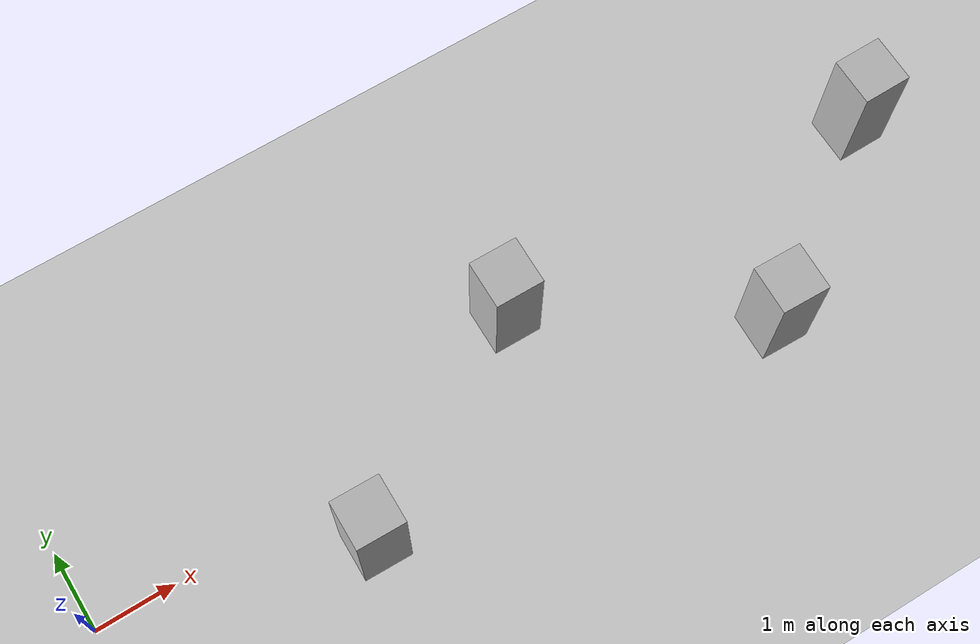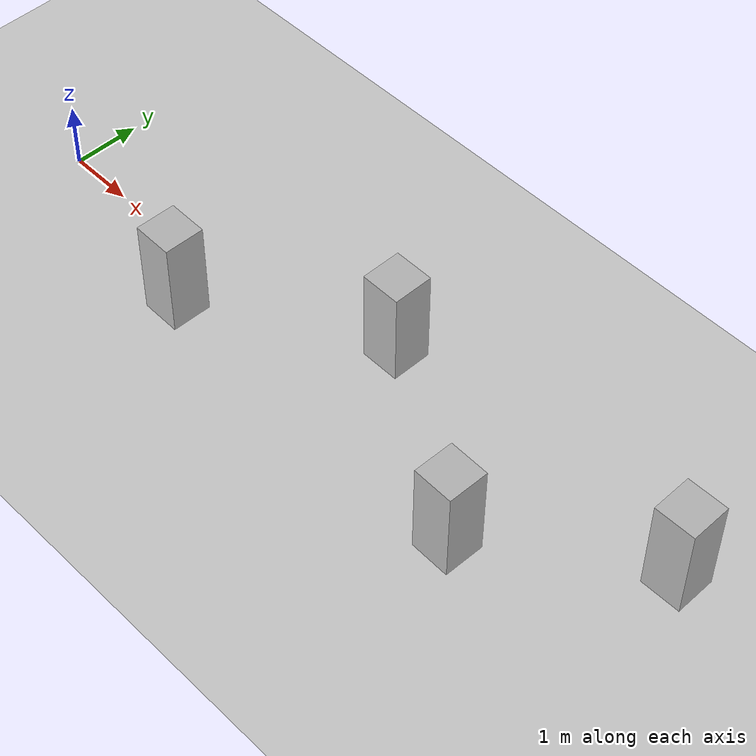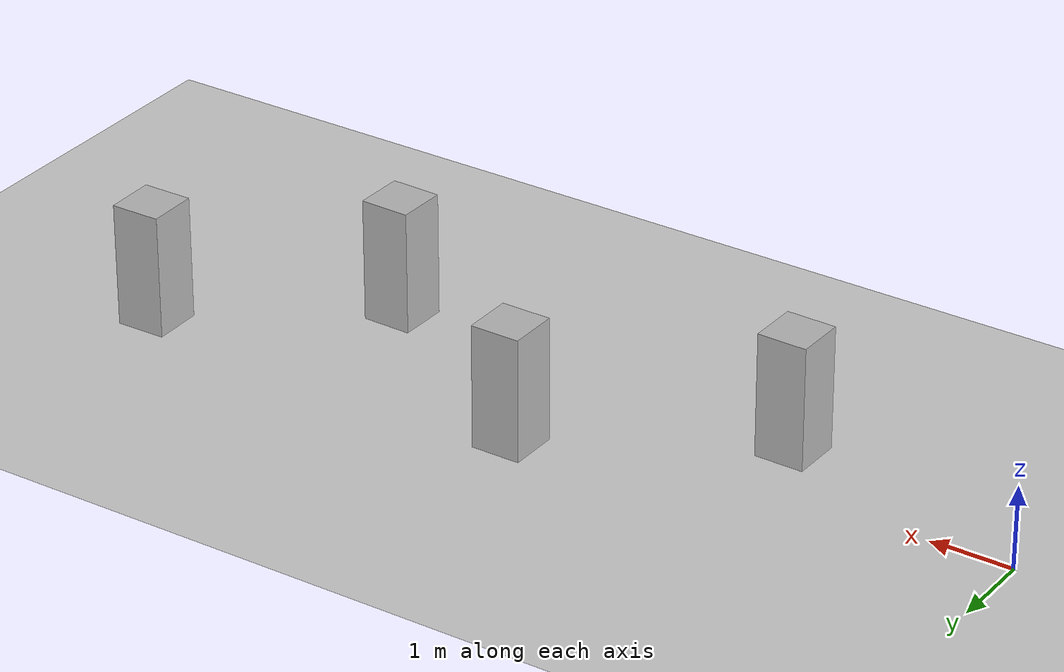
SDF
<?xml version="1.0"?>
<sdf version="1.6">
  <world name="v2-04e2-static-s4713">
    <gravity>0 0 -9.81</gravity>
    <physics name="v2_deterministic" type="ode">
      <max_step_size>0.002</max_step_size>
      <real_time_update_rate>500</real_time_update_rate>
    </physics>
    <include>
      <uri>model://sun</uri>
    </include>
    <include>
      <uri>model://ground_plane</uri>
    </include>
    <model name="pillar-1">
      <static>true</static>
      <pose>3.124409234 -0.771714108 0.750000000 0 0 -0.013963247</pose>
      <link name="link">
        <collision name="collision">
          <geometry>
            <box>
              <size>0.600000 0.600000 1.500000</size>
            </box>
          </geometry>
        </collision>
        <visual name="visual">
          <geometry>
            <box>
              <size>0.600000 0.600000 1.500000</size>
            </box>
          </geometry>
        </visual>
      </link>
    </model>
    <model name="pillar-2">
      <static>true</static>
      <pose>5.754002428 0.763343343 0.750000000 0 0 -0.005270785</pose>
      <link name="link">
        <collision name="collision">
          <geometry>
            <box>
              <size>0.600000 0.600000 1.500000</size>
            </box>
          </geometry>
        </collision>
        <visual name="visual">
          <geometry>
            <box>
              <size>0.600000 0.600000 1.500000</size>
            </box>
          </geometry>
        </visual>
      </link>
    </model>
    <model name="pillar-3">
      <static>true</static>
      <pose>8.377168967 -0.911152945 0.750000000 0 0 -0.022106349</pose>
      <link name="link">
        <collision name="collision">
          <geometry>
            <box>
              <size>0.600000 0.600000 1.500000</size>
            </box>
          </geometry>
        </collision>
        <visual name="visual">
          <geometry>
            <box>
              <size>0.600000 0.600000 1.500000</size>
            </box>
          </geometry>
        </visual>
      </link>
    </model>
    <model name="pillar-4">
      <static>true</static>
      <pose>10.632703026 0.712215571 0.750000000 0 0 0.011235585</pose>
      <link name="link">
        <collision name="collision">
          <geometry>
            <box>
              <size>0.600000 0.600000 1.500000</size>
            </box>
          </geometry>
        </collision>
        <visual name="visual">
          <geometry>
            <box>
              <size>0.600000 0.600000 1.500000</size>
            </box>
          </geometry>
        </visual>
      </link>
    </model>
  </world>
</sdf>
